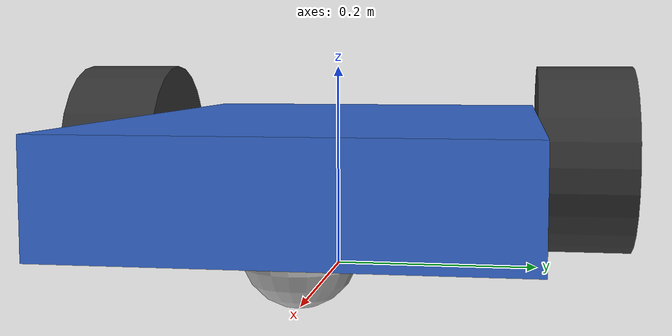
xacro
<?xml version="1.0"?>
<!-- Top level of the robot description. This file holds no
content of its own, it only pulls the parts together in order.-->
<robot name="my_robot" xmlns:xacro="http://www.ros.org/wiki/xacro">

  <!--Dimensions and materials. Must come first, since the parts below
  refer to these values.-->
  <xacro:include filename="parameters.xacro"/>

  <!--The robot: wheel macro, links and joints.-->
  <xacro:include filename="my_robot_core.xacro"/>

  <!--Gazebo specific settings: friction and the simulation plugins.-->
  <xacro:include filename="gazebo_control.xacro"/>

  <!--Task 2 adds gazebo_control.xacro here, Task 3 adds lidar.xacro.-->

</robot>

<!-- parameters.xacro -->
<!--Dimensions and materials. Included first, because everything below it
refers to these values.-->
<robot xmlns:xacro="http://www.ros.org/wiki/xacro">

<!--Every dimension is written once here-->
<!--Chassis box-->
<xacro:property name="base_length" value="0.6"/>
<xacro:property name="base_width" value="0.4"/>
<xacro:property name="base_height" value="0.1"/>
<!--Drive wheels-->
<xacro:property name="wheel_radius" value="0.1"/>
<xacro:property name="wheel_thickness" value="0.1"/>
<!--How far behind the chassis centre the wheel sit-->
<xacro:property name="wheel_x_offset" value="-0.1"/>
<!--Distance between the two wheel centres-->
<xacro:property name="wheel_separation" value="${base_width + wheel_thickness}"/>
<!--Front caster-->
<xacro:property name="caster_radius" value="0.05"/>
<xacro:property name="caster_x_offset" value="0.2"/>

<!--Materials-->
<material name="blue">
  <color rgba="0.2 0.4 0.8 1.0"/>
</material>
<material name="dark_grey">
  <color rgba="0.2 0.2 0.2 1.0"/>
</material>
<material name="light_grey">
  <color rgba="0.7 0.7 0.7 1.0"/>
</material>

<!--Masses-->
<xacro:property name="base_mass" value="5.0"/>
<xacro:property name="wheel_mass" value="0.5"/>
<xacro:property name="caster_mass" value="0.2"/>

<!--Tensor for the primitive shapes.
Each takes a mass and the dimensions.-->
<xacro:macro name="inertial_box" params="mass length width height">
  <inertial>
    <mass value="${mass}"/>
    <inertia ixx="${mass*(width*width + height*height)/12}" ixy="0" ixz="0"
             iyy="${mass*(length*length + height*height)/12}" iyz="0"
             izz="${mass*(length*length + width*width)/12}"/>
  </inertial>
</xacro:macro>

<xacro:macro name="inertial_cylinder" params="mass radius length">
  <inertial>
    <mass value="${mass}"/>
    <inertia ixx="${mass*(3*radius*radius + length*length)/12}" ixy="0" ixz="0"
             iyy="${mass*(3*radius*radius + length*length)/12}" iyz="0"
             izz="${mass*radius*radius/2}"/>
  </inertial>
</xacro:macro>

<xacro:macro name="inertial_sphere" params="mass radius">
  <inertial>
    <mass value="${mass}"/>
    <inertia ixx="${2*mass*radius*radius/5}" ixy="0" ixz="0"
             iyy="${2*mass*radius*radius/5}" iyz="0"
             izz="${2*mass*radius*radius/5}"/>
  </inertial>
</xacro:macro>

</robot>

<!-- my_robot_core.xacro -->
<!--The robot itself: the wheel macro, then the links and joints. Uses the
dimensions and materials from parameters.urdf.xacro.-->
<robot xmlns:xacro="http://www.ros.org/wiki/xacro">

<!--Wheel macro that have both the link and the joint,and takes a names and
position-->
<xacro:macro name="drive_wheel" params="prefix x_offset y_offset">
<!--The cylinder stays upright. The joint below lays it flat -->
  <link name="${prefix}_wheel">
    <visual>
      <origin xyz="0 0 0" rpy="0 0 0"/>
      <geometry>
        <cylinder radius="${wheel_radius}" length="${wheel_thickness}"/>
      </geometry>
      <material name="dark_grey"/>
    </visual>
  </link>

   <!--The rpy lays the cylinder flat and points its z sideways, making z
  the rolling axis.-->
  <joint name="${prefix}_wheel_joint" type="continuous">
    <parent link="base_link"/>
    <child link="${prefix}_wheel"/>
    <origin xyz="${x_offset} ${y_offset} 0" rpy="${-pi/2} 0 0"/>
    <axis xyz="0 0 1"/>
  </joint>

</xacro:macro>

<!--============================ LINKS ============================-->
<!--Root of the TF tree-->
<link name="base_footprint"/>

<!--Body of the robot-->
<link name="base_link">
  <visual>
    <origin xyz="0 0 0" rpy="0 0 0"/>
    <geometry>
      <box size="${base_length} ${base_width} ${base_height}"/>
    </geometry>
    <material name="blue"/>
  </visual>
</link>

<!--Front caster-->
<link name="caster_wheel">
  <visual>
    <origin xyz="0 0 0" rpy="0 0 0"/>
    <geometry>
      <sphere radius="${caster_radius}"/>
    </geometry>
    <material name="light_grey"/>
  </visual>
</link>

<!--============================ JOINTS ===========================-->
<!--Lifts the body off the ground. The lift is one wheel radius, so the
wheels end up resting exactly on the floor.-->
<joint name="base_joint" type="fixed">
  <parent link="base_footprint"/>
  <child link="base_link"/>
  <origin xyz="0 0 ${wheel_radius}" rpy="0 0 0"/>
</joint>

<!--Drops the caster until its underside reaches the ground.-->
<joint name="caster_joint" type="fixed">
  <parent link="base_link"/>
  <child link="caster_wheel"/>
  <origin xyz="${caster_x_offset} 0 ${caster_radius - wheel_radius}" rpy="0 0 0"/>
</joint>

<!--============================ WHEELS ===========================-->
<!--The two drive wheels, both built from the macros-->

<xacro:drive_wheel prefix="left" x_offset="${wheel_x_offset}"
                   y_offset="${wheel_separation/2}"/>

<xacro:drive_wheel prefix="right" x_offset="${wheel_x_offset}"
                   y_offset="${-wheel_separation/2}"/>

</robot>
